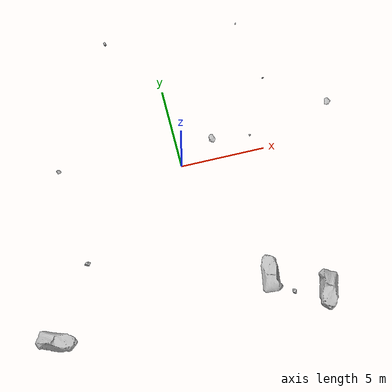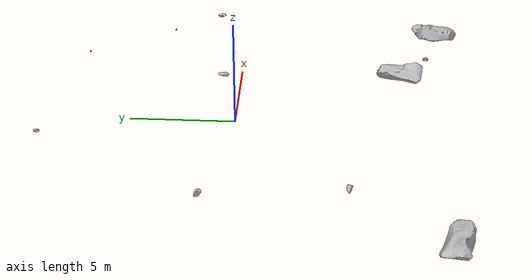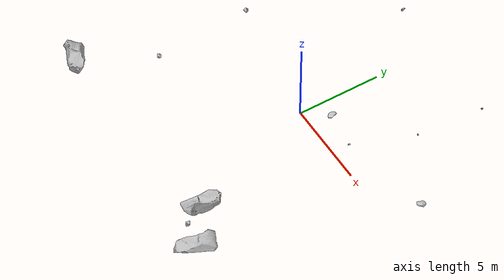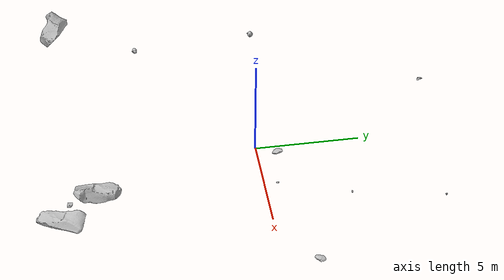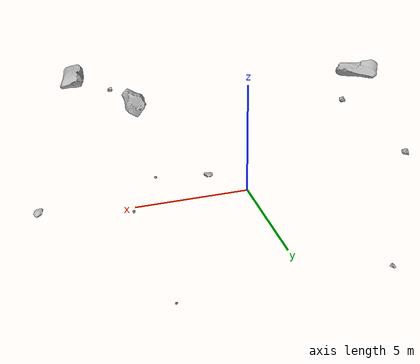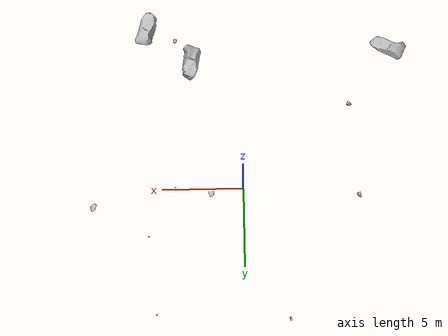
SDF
<sdf version="1.7">
 <world name="marsyard">
  <gravity>0 0 -9.81</gravity>
  <physics name="dart_physics" type="ignored">
   <max_step_size>0.003</max_step_size>
   <real_time_update_rate>333</real_time_update_rate>
   <real_time_factor>1.0</real_time_factor>
  </physics>
  <plugin filename="ignition-gazebo-physics-system" name="ignition::gazebo::systems::Physics"/>
  <plugin filename="ignition-gazebo-user-commands-system" name="ignition::gazebo::systems::UserCommands"/>
  <plugin filename="ignition-gazebo-scene-broadcaster-system" name="ignition::gazebo::systems::SceneBroadcaster"/>
  <plugin filename="ignition-gazebo-contact-system" name="ignition::gazebo::systems::Contact"/>
  <scene>
   <ambient>0.95 0.95 0.95 1</ambient>
   <background>0.70 0.70 0.70 1</background>
   <shadows>false</shadows>
  </scene>
  <light type="directional" name="sun">
   <cast_shadows>false</cast_shadows>
   <pose>0 0 30 0 0 0</pose>
   <diffuse>1 1 1 1</diffuse>
   <specular>0.15 0.15 0.15 1</specular>
   <direction>-0.35 0.1 -0.93</direction>
  </light>
  <model name="Rock_1">
   <static>true</static>
   <pose>5.3690 8.1321 0.8075 0.0000 0.0000 0.3468</pose>
   <link name="link">
    <visual name="visual">
     <geometry><mesh><uri>package://rock_generator/rocks_ws/rock_9/meshes/rock_9.stl</uri></mesh></geometry>
    </visual>
    <collision name="collision">
     <geometry><mesh><uri>package://rock_generator/rocks_ws/rock_9/meshes/rock_9.stl</uri></mesh></geometry>
    </collision>
   </link>
  </model>
  <model name="Rock_2">
   <static>true</static>
   <pose>-7.1843 0.8437 1.2081 0.0000 0.0000 -1.3357</pose>
   <link name="link">
    <visual name="visual">
     <geometry><mesh><uri>package://rock_generator/rocks_ws/rock_3/meshes/rock_3.stl</uri></mesh></geometry>
    </visual>
    <collision name="collision">
     <geometry><mesh><uri>package://rock_generator/rocks_ws/rock_3/meshes/rock_3.stl</uri></mesh></geometry>
    </collision>
   </link>
  </model>
  <model name="Rock_3">
   <static>true</static>
   <pose>9.1936 1.4493 1.3442 0.0000 0.0000 0.9314</pose>
   <link name="link">
    <visual name="visual">
     <geometry><mesh><uri>package://rock_generator/rocks_ws/rock_8/meshes/rock_8.stl</uri></mesh></geometry>
    </visual>
   </link>
  </model>
  <model name="Rock_4">
   <static>true</static>
   <pose>-6.6559 -5.0741 1.2712 0.0000 0.0000 -0.5443</pose>
   <link name="link">
    <visual name="visual">
     <geometry><mesh><uri>package://rock_generator/rocks_ws/rock_3/meshes/rock_3.stl</uri></mesh></geometry>
    </visual>
    <collision name="collision">
     <geometry><mesh><uri>package://rock_generator/rocks_ws/rock_3/meshes/rock_3.stl</uri></mesh></geometry>
    </collision>
   </link>
  </model>
  <model name="Rock_5">
   <static>true</static>
   <pose>5.8243 -9.8528 1.8319 0.0000 0.0000 1.4351</pose>
   <link name="link">
    <visual name="visual">
     <geometry><mesh><uri>package://rock_generator/rocks_ws/rock_4/meshes/rock_4.stl</uri></mesh></geometry>
    </visual>
    <collision name="collision">
     <geometry><mesh><uri>package://rock_generator/rocks_ws/rock_4/meshes/rock_4.stl</uri></mesh></geometry>
    </collision>
   </link>
  </model>
  <model name="Rock_7">
   <static>true</static>
   <pose>-9.1452 -8.8490 0.7415 0.0000 0.0000 2.9046</pose>
   <link name="link">
    <visual name="visual">
     <geometry><mesh><uri>package://rock_generator/rocks_ws/rock_4/meshes/rock_4.stl</uri></mesh></geometry>
    </visual>
   </link>
  </model>
  <model name="Rock_8">
   <static>true</static>
   <pose>5.7863 3.5471 1.9926 0.0000 0.0000 3.0524</pose>
   <link name="link">
    <visual name="visual">
     <geometry><mesh><uri>package://rock_generator/rocks_ws/rock_9/meshes/rock_9.stl</uri></mesh></geometry>
    </visual>
    <collision name="collision">
     <geometry><mesh><uri>package://rock_generator/rocks_ws/rock_9/meshes/rock_9.stl</uri></mesh></geometry>
    </collision>
   </link>
  </model>
  <model name="Rock_9">
   <static>true</static>
   <pose>1.9619 0.6975 1.4775 0.0000 0.0000 -1.6060</pose>
   <link name="link">
    <visual name="visual">
     <geometry><mesh><uri>package://rock_generator/rocks_ws/rock_8/meshes/rock_8.stl</uri></mesh></geometry>
    </visual>
    <collision name="collision">
     <geometry><mesh><uri>package://rock_generator/rocks_ws/rock_8/meshes/rock_8.stl</uri></mesh></geometry>
    </collision>
   </link>
  </model>
  <model name="Rock_10">
   <static>true</static>
   <pose>4.0986 -9.2905 1.3703 0.0000 0.0000 0.4217</pose>
   <link name="link">
    <visual name="visual">
     <geometry><mesh><uri>package://rock_generator/rocks_ws/rock_1/meshes/rock_1.stl</uri></mesh></geometry>
    </visual>
   </link>
  </model>
  <model name="Rock_11">
   <static>true</static>
   <pose>4.1615 0.3575 1.5363 0.0000 0.0000 -1.5100</pose>
   <link name="link">
    <visual name="visual">
     <geometry><mesh><uri>package://rock_generator/rocks_ws/rock_5/meshes/rock_5.stl</uri></mesh></geometry>
    </visual>
   </link>
  </model>
  <model name="Rock_12">
   <static>true</static>
   <pose>3.1558 -7.9246 0.8562 0.0000 0.0000 -1.5509</pose>
   <link name="link">
    <visual name="visual">
     <geometry><mesh><uri>package://rock_generator/rocks_ws/rock_4/meshes/rock_4.stl</uri></mesh></geometry>
    </visual>
    <collision name="collision">
     <geometry><mesh><uri>package://rock_generator/rocks_ws/rock_4/meshes/rock_4.stl</uri></mesh></geometry>
    </collision>
   </link>
  </model>
  <model name="Rock_13">
   <static>true</static>
   <pose>-2.7276 8.5510 0.9949 0.0000 0.0000 1.6445</pose>
   <link name="link">
    <visual name="visual">
     <geometry><mesh><uri>package://rock_generator/rocks_ws/rock_6/meshes/rock_6.stl</uri></mesh></geometry>
    </visual>
    <collision name="collision">
     <geometry><mesh><uri>package://rock_generator/rocks_ws/rock_6/meshes/rock_6.stl</uri></mesh></geometry>
    </collision>
   </link>
  </model>
 </world>
</sdf>
